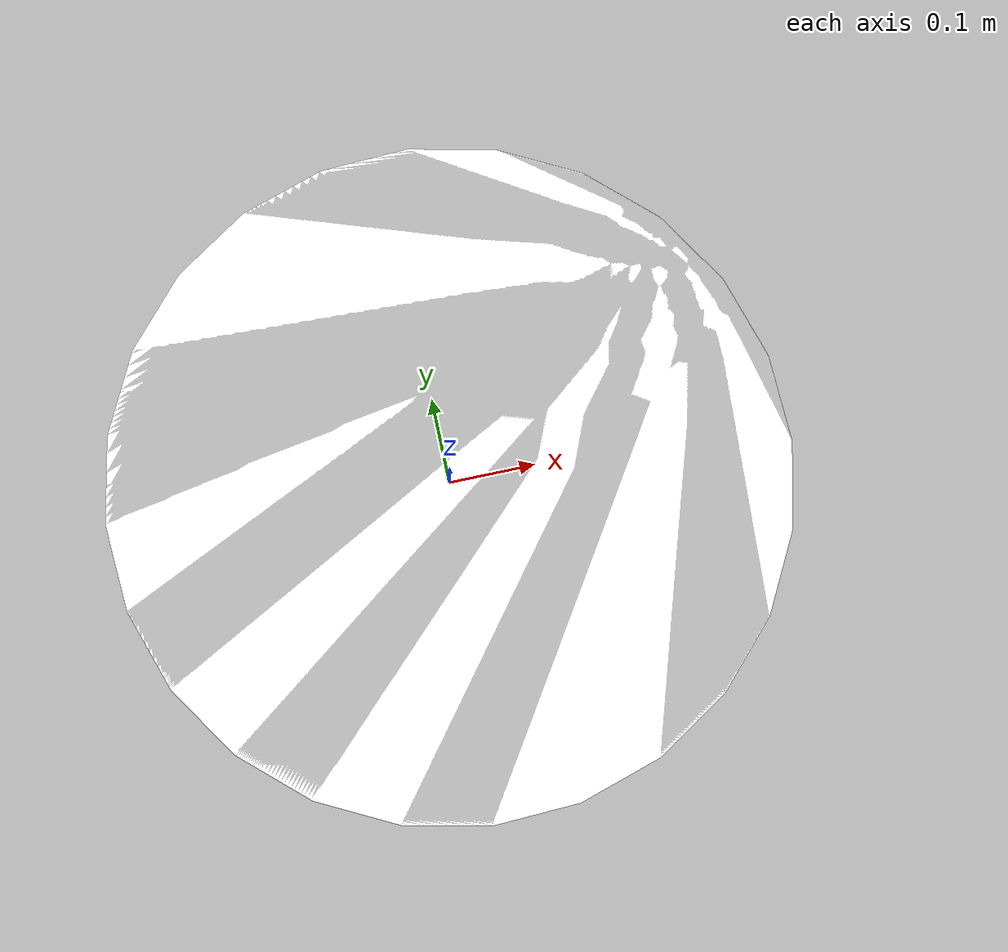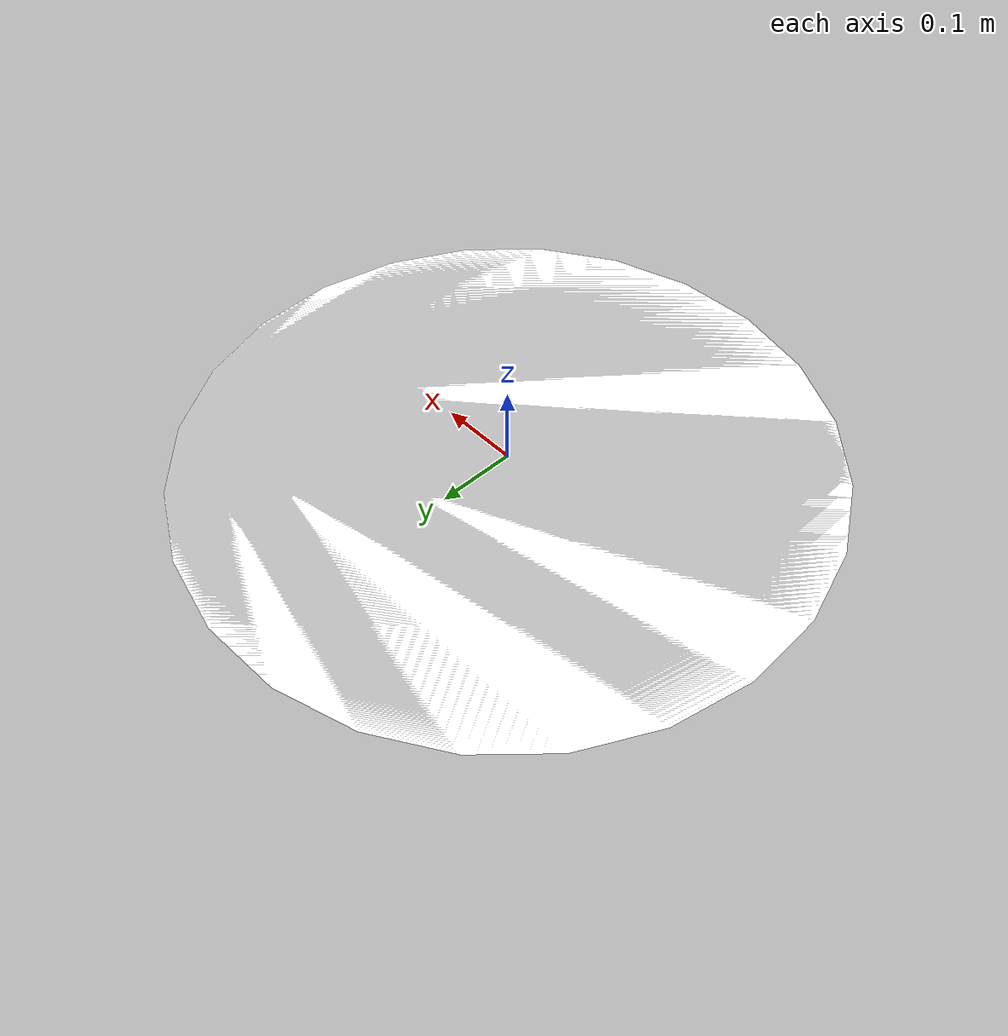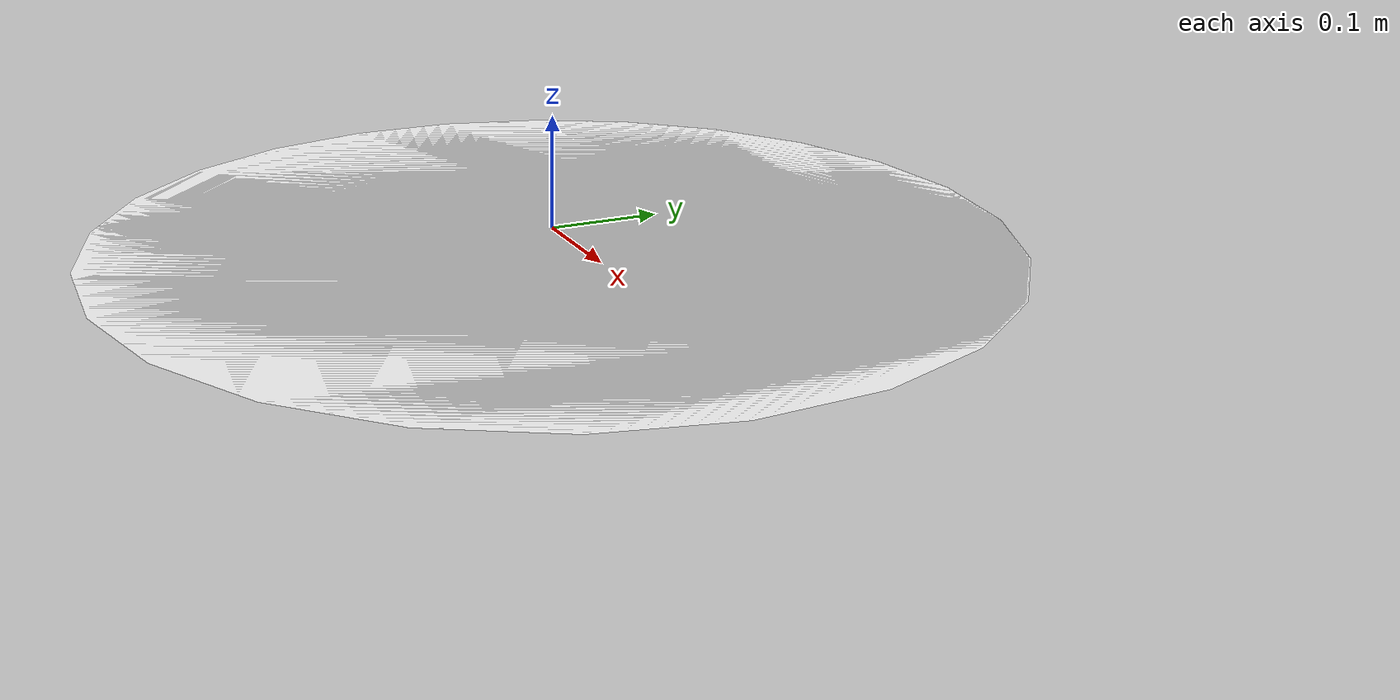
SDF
<?xml version='1.0'?>
<sdf version='1.4'>
  <model name="fogo">
		<static>true</static>

	<link name='chassis'>
        <pose>0 0 0.001 0 0 0</pose>

        <visual name='visual'>
      <geometry>
			<mesh>
            <uri>file:///home/dav/.gazebo/models/1fogo/fire_marker.dae</uri>
          </mesh>
      </geometry>
        </visual>
      </link>

  </model>
</sdf>
